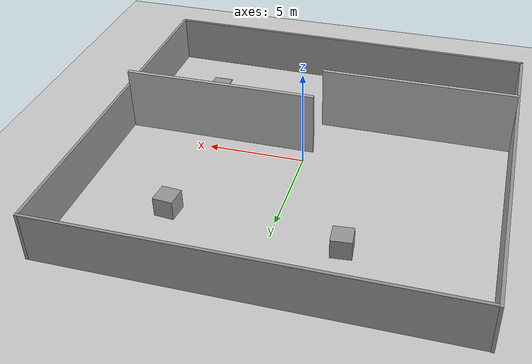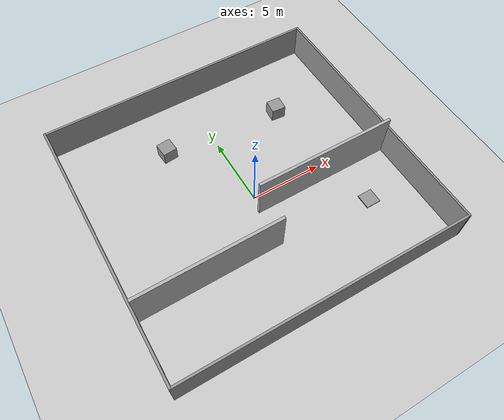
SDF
<sdf version="1.7">
 <world name="default">
  <light name="sun" type="directional">
   <pose>0 0 10 0 -0 0</pose>
   <diffuse>0.8 0.8 0.8 1</diffuse>
   <specular>0.2 0.2 0.2 1</specular>
   <attenuation>
    <range>1000</range>
    <constant>0.9</constant>
    <linear>0.01</linear>
    <quadratic>0.001</quadratic>
   </attenuation>
   <direction>-0.5 0.1 -0.9</direction>
   <spot><inner_angle>0</inner_angle><outer_angle>0</outer_angle><falloff>0</falloff></spot>
  </light>
  <model name="ground_plane">
   <static>1</static>
   <link name="link">
    <collision name="collision">
     <geometry><plane><normal>0 0 1</normal><size>100 100</size></plane></geometry>
     <surface><friction><ode><mu>100</mu><mu2>50</mu2></ode></friction></surface>
    </collision>
    <visual name="visual">
     <cast_shadows>0</cast_shadows>
     <geometry><plane><normal>0 0 1</normal><size>100 100</size></plane></geometry>
     <material>
      <script><uri>file://media/materials/scripts/gazebo.material</uri><name>Gazebo/Grey</name></script>
     </material>
    </visual>
   </link>
  </model>
  <gravity>0 0 -9.8</gravity>
  <magnetic_field>6e-06 2.3e-05 -4.2e-05</magnetic_field>
  <atmosphere type="adiabatic"/>
  <physics type="ode">
   <max_step_size>0.001</max_step_size>
   <real_time_factor>1</real_time_factor>
   <real_time_update_rate>1000</real_time_update_rate>
  </physics>
  <scene><ambient>0.4 0.4 0.4 1</ambient><background>0.7 0.7 0.7 1</background><shadows>1</shadows></scene>
  <audio><device>default</device></audio>
  <spherical_coordinates>
   <surface_model>EARTH_WGS84</surface_model>
   <latitude_deg>0</latitude_deg>
   <longitude_deg>0</longitude_deg>
   <elevation>0</elevation>
   <heading_deg>0</heading_deg>
  </spherical_coordinates>
  <model name="world">
   <pose>-0.20967 0.581622 0 0 -0 0</pose>
   <link name="Wall_13">
    <collision name="Wall_13_Collision">
     <geometry><box><size>18.75 0.15 2.5</size></box></geometry>
     <pose>0 0 1.25 0 -0 0</pose>
    </collision>
    <visual name="Wall_13_Visual">
     <pose>0 0 1.25 0 -0 0</pose>
     <geometry><box><size>18.75 0.15 2.5</size></box></geometry>
     <material>
      <script><uri>file://media/materials/scripts/gazebo.material</uri><name>Gazebo/Grey</name></script>
      <ambient>1 1 1 1</ambient>
     </material>
     <meta><layer>0</layer></meta>
    </visual>
    <pose>-9.98583 0.137332 0 0 -0 -1.5708</pose>
   </link>
   <link name="Wall_14">
    <collision name="Wall_14_Collision">
     <geometry><box><size>20.1232 0.15 2.5</size></box></geometry>
     <pose>0 0 1.25 0 -0 0</pose>
    </collision>
    <visual name="Wall_14_Visual">
     <pose>0 0 1.25 0 -0 0</pose>
     <geometry><box><size>20.1232 0.15 2.5</size></box></geometry>
     <material>
      <script><uri>file://media/materials/scripts/gazebo.material</uri><name>Gazebo/Grey</name></script>
      <ambient>1 1 1 1</ambient>
     </material>
     <meta><layer>0</layer></meta>
    </visual>
    <pose>-0 -9.31475 0 0 -0 -0.012184</pose>
   </link>
   <link name="Wall_15">
    <collision name="Wall_15_Collision">
     <geometry><box><size>19 0.15 2.5</size></box></geometry>
     <pose>0 0 1.25 0 -0 0</pose>
    </collision>
    <visual name="Wall_15_Visual">
     <pose>0 0 1.25 0 -0 0</pose>
     <geometry><box><size>19 0.15 2.5</size></box></geometry>
     <material>
      <script><uri>file://media/materials/scripts/gazebo.material</uri><name>Gazebo/Grey</name></script>
      <ambient>1 1 1 1</ambient>
     </material>
     <meta><layer>0</layer></meta>
    </visual>
    <pose>9.98583 -0.011425 0 0 -0 1.5708</pose>
   </link>
   <link name="Wall_16">
    <collision name="Wall_16_Collision">
     <geometry><box><size>20 0.15 2.5</size></box></geometry>
     <pose>0 0 1.25 0 -0 0</pose>
    </collision>
    <visual name="Wall_16_Visual">
     <pose>0 0 1.25 0 -0 0</pose>
     <geometry><box><size>20 0.15 2.5</size></box></geometry>
     <material>
      <script><uri>file://media/materials/scripts/gazebo.material</uri><name>Gazebo/Grey</name></script>
      <ambient>1 1 1 1</ambient>
     </material>
     <meta><layer>0</layer></meta>
    </visual>
    <pose>0.060835 9.41357 0 0 -0 3.14159</pose>
   </link>
   <static>1</static>
  </model>
  <model name="unit_box">
   <pose>-3.39141 6.05717 0.5 0 -0 0.091437</pose>
   <link name="link">
    <inertial>
     <mass>1</mass>
     <inertia>
      <ixx>0.166667</ixx>
      <ixy>0</ixy>
      <ixz>0</ixz>
      <iyy>0.166667</iyy>
      <iyz>0</iyz>
      <izz>0.166667</izz>
     </inertia>
    </inertial>
    <collision name="collision"><geometry><box><size>1 1 1</size></box></geometry></collision>
    <visual name="visual">
     <geometry><box><size>1 1 1</size></box></geometry>
     <material>
      <script><name>Gazebo/Grey</name><uri>file://media/materials/scripts/gazebo.material</uri></script>
     </material>
    </visual>
   </link>
  </model>
  <model name="unit_box_0">
   <pose>5.07152 5.44616 0.499995 -1e-05 -0 -0.090204</pose>
   <link name="link">
    <inertial>
     <mass>1</mass>
     <inertia>
      <ixx>0.166667</ixx>
      <ixy>0</ixy>
      <ixz>0</ixz>
      <iyy>0.166667</iyy>
      <iyz>0</iyz>
      <izz>0.166667</izz>
     </inertia>
    </inertial>
    <collision name="collision"><geometry><box><size>1 1 1</size></box></geometry></collision>
    <visual name="visual">
     <geometry><box><size>1 1 1</size></box></geometry>
     <material>
      <script><name>Gazebo/Grey</name><uri>file://media/materials/scripts/gazebo.material</uri></script>
     </material>
    </visual>
   </link>
  </model>
  <model name="unit_box_1">
   <pose>5.92773 -4.35589 1.19447 -2e-06 2e-06 0.000667</pose>
   <link name="link">
    <inertial>
     <mass>1</mass>
     <inertia>
      <ixx>0.166667</ixx>
      <ixy>0</ixy>
      <ixz>0</ixz>
      <iyy>0.166667</iyy>
      <iyz>0</iyz>
      <izz>0.166667</izz>
     </inertia>
    </inertial>
    <collision name="collision"><geometry><box><size>1 1 0.0733476</size></box></geometry></collision>
    <visual name="visual">
     <geometry><box><size>1 1 0.0733476</size></box></geometry>
     <material>
      <script><name>Gazebo/Grey</name><uri>file://media/materials/scripts/gazebo.material</uri></script>
     </material>
    </visual>
   </link>
  </model>
  <model name="cutout_wall">
   <static>1</static>
   <link name="link">
    <pose>0 0 1.4 0 -0 0</pose>
    <collision name="collision">
     <geometry><box><size>10 0.2 3.8</size></box></geometry>
     <surface>
      <contact>
       <collide_without_contact>1</collide_without_contact>
       <collide_without_contact_bitmask>2</collide_without_contact_bitmask>
      </contact>
     </surface>
    </collision>
    <visual name="visual">
     <cast_shadows>0</cast_shadows>
     <geometry><box><size>10 0.2 3.8</size></box></geometry>
     <material>
      <script>
       <uri>model://cutout_wall/materials/scripts</uri>
       <uri>model://cutout_wall/materials/textures</uri>
       <name>drc_practice/cutout_wall</name>
      </script>
     </material>
    </visual>
    <sensor name="mud_contact" type="contact">
     <always_on>1</always_on>
     <update_rate>1000</update_rate>
     <contact><collision>collision</collision><topic>__default_topic__</topic></contact>
    </sensor>
   </link>
   <plugin name="gazebo_mud" filename="libMudPlugin.so">
    <contact_sensor_name>link/mud_contact</contact_sensor_name>
    <stiffness>0.0</stiffness>
    <damping>40.0</damping>
    <contact_surface_bitmask>2</contact_surface_bitmask>
    <link_name>drill::link</link_name>
   </plugin>
   <pose>4.7139 -1.00686 0 0 -0 0</pose>
  </model>
  <model name="cutout_wall_0">
   <static>1</static>
   <link name="link">
    <pose>0 0 1.4 0 -0 0</pose>
    <collision name="collision">
     <geometry><box><size>10 0.2 3.8</size></box></geometry>
     <surface>
      <contact>
       <collide_without_contact>1</collide_without_contact>
       <collide_without_contact_bitmask>2</collide_without_contact_bitmask>
      </contact>
     </surface>
    </collision>
    <visual name="visual">
     <cast_shadows>0</cast_shadows>
     <geometry><box><size>10 0.2 3.8</size></box></geometry>
     <material>
      <script>
       <uri>model://cutout_wall/materials/scripts</uri>
       <uri>model://cutout_wall/materials/textures</uri>
       <name>drc_practice/cutout_wall</name>
      </script>
     </material>
    </visual>
    <sensor name="mud_contact" type="contact">
     <always_on>1</always_on>
     <update_rate>1000</update_rate>
     <contact><collision>collision</collision><topic>__default_topic__</topic></contact>
    </sensor>
   </link>
   <plugin name="gazebo_mud" filename="libMudPlugin.so">
    <contact_sensor_name>link/mud_contact</contact_sensor_name>
    <stiffness>0.0</stiffness>
    <damping>40.0</damping>
    <contact_surface_bitmask>2</contact_surface_bitmask>
    <link_name>drill::link</link_name>
   </plugin>
   <pose>-5.12739 -3.6635 0 0 -0 0</pose>
  </model>
 </world>
</sdf>
